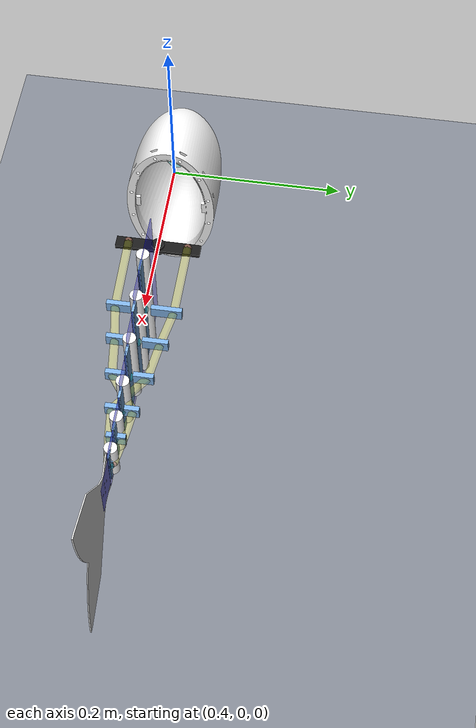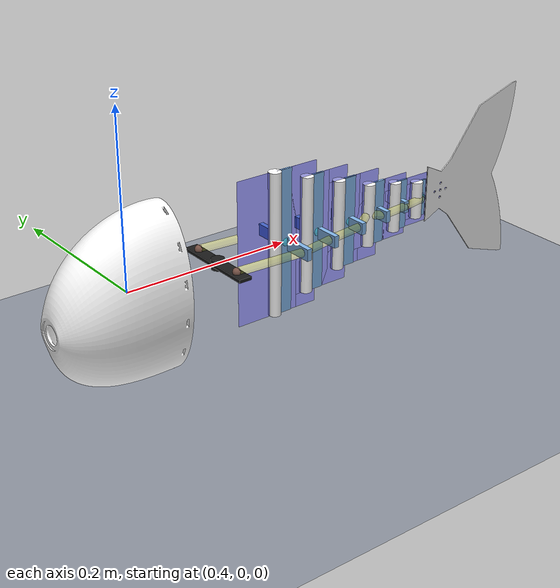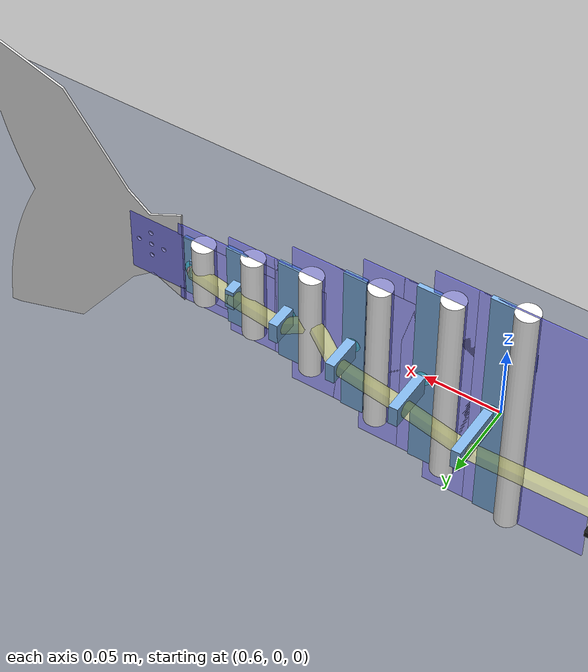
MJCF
<!--Creates a tendon fish based on Mike Yan Michelis' design. Adds a contact set between the head and the sliding block-->
<!-- Measures the force of the fish (from the thrust of its tail) via the FishTest.py script and the force sensor on the block-->
<!-- adds a realistic mass value to the bodies-->
<!--adds realistic proportions and ratios amongst the tail length, tail joints, motor to head and motor to tail-->
<!--same as TendonFishFullSize.xml, except it doesn't have any unnecessary stl files or force sensor, should just measure forward movement-->
<mujoco model="tendonFish">
    <option gravity="0 0 0" density="1000" viscosity="0.0013" integrator="implicitfast" timestep="0.001" iterations="100" solver="Newton" tolerance="1e-15" ls_tolerance="1e-9" noslip_tolerance="1e-9" o_solimp="0 0.01 0.01 0.1 2">
        <flag contact="enable"/>
    </option>

    <visual>
        <global offheight="2160" offwidth="3840"/>
        <rgba haze=".3 .3 .3 1"/>
    </visual>

    <!--add a mesh that pivots like the actual fishtank setup-->
    <!--imports meshes-->
    <asset>
        <texture type="skybox" builtin="gradient" rgb1="0.6 0.6 0.6" rgb2="0 0 0" width="512" height="512"/>
        <texture name="texplane" type="2d" builtin="checker" rgb1=".15 .2 .35" rgb2=".2 .3 .45" width="512" height="512" mark="cross" markrgb=".8 .8 .8"/>
        <material name="matplane" reflectance="0.3" texture="texplane" texrepeat="10 10" texuniform="true"/>
        <mesh name="tailMesh" file="C:\Users\15405\OneDrive\Desktop\Career\ETHZ\ETHZ Work\mujoco-3.3.2-windows-x86_64\model\mesh\tailV2.STL" scale="0.0015 0.0015 0.0015" />
        <mesh name="headMesh" file="C:\Users\15405\OneDrive\Desktop\Career\ETHZ\ETHZ Work\mujoco-3.3.2-windows-x86_64\model\mesh\headExternal.STL" scale="0.0015 0.0015 0.0015" />
        <mesh name="Tank" file="C:\Users\15405\OneDrive\Desktop\Career\ETHZ\ETHZ Work\mujoco-3.3.2-windows-x86_64\model\mesh\glassTank.STL" scale="0.0015 0.0015 0.0025" />
        <mesh name="loadCell" file="C:\Users\15405\OneDrive\Desktop\Career\ETHZ\ETHZ Work\mujoco-3.3.2-windows-x86_64\model\mesh\loadCell.STL" scale="0.015 0.025 0.025" />
        <mesh name="4040" file="C:\Users\15405\OneDrive\Desktop\Career\ETHZ\ETHZ Work\mujoco-3.3.2-windows-x86_64\model\mesh\4040_L1.STL" scale="0.0025 0.0025 0.0025" />
        <mesh name="tubeConnector" file="C:\Users\15405\OneDrive\Desktop\Career\ETHZ\ETHZ Work\mujoco-3.3.2-windows-x86_64\model\mesh\tubeConnector.STL" scale="0.0015 0.0025 0.0025" />
        <mesh name="4040_smaller" file="C:\Users\15405\OneDrive\Desktop\Career\ETHZ\ETHZ Work\mujoco-3.3.2-windows-x86_64\model\mesh\4040_L1.STL" scale="0.0025 0.0025 0.0015" />

        <material name="acrylic" rgba="0.576470588235 0.694117647059 0.8 0.2"/>
        <material name="alu" reflectance="0.9" specular="0.9" shininess="0.9" rgba=".7 .7 .7 1"/>
        <material name="marker" rgba="0.0196078431373 0.960784313725 0.96862745098 .3"/>
        <!--density of PLA taken to be 1430, not referenced as a body but all density=1430 references are taken to be PLA-->
    </asset>

    <!--High damping and stifness values on tendon make it semi-rigid which is what is intended in the real-fish test-->
    <default>
        <joint type="hinge" pos="0 0 0" axis="0 0 1" range="-80 80" stiffness="0.65" damping="0.0"/>
        <geom fluidcoef="0.1 0.1 0.1 2.0 1.0" condim="1"/>
        <tendon width="0.005" rgba="0.941176470588 0.96862745098 0.0196078431373 .2" stiffness="60" damping="1"/>
    </default>

    <worldbody>
        <camera name="fixed" pos="0.4 -1.2 1.2" xyaxes="1 0 0 0 1 1"/>
        <camera name="fixedTop" pos="-0.85 0 1.5" xyaxes="0 -1 0 1 0 0.75"/>
        <camera name="fixedDiag" pos="1.2 -1.3 1.3" xyaxes="0.8 0.6 0 -0.4 0.5 0.75"/>
        <camera pos="0.625 -0.842 0.620" xyaxes="0.758 0.653 -0.000 -0.468 0.544 0.697"/>

        <geom name="floor" pos="0 0 -0.2" size="0 0 1" type="plane" material="matplane"/>
        <geom name="ceiling" pos="0 0 0.2" size="0 0 1" zaxis="0 0 -1" type="plane" rgba=".7 .1 .1 0"/>
        <light directional="true" diffuse=".8 .8 .8" specular=".2 .2 .2" pos="0 0 5" dir="0 0 -1"/>

        <!-- adds a slider range to keep the fish always propogating forward from its original com like in the simulation -->
        <!-- add a slider that keeps the head moving forward-->
        <body pos=".35 0 0">
            <joint name="headX" pos="0.02432519 0 0.00306519" type="slide" axis="1 0 0" stiffness="0" damping="0" range="-0.025669489880513867 0.003387345022720789"/>
            <site name="COM" pos="0.02432519 0 0.00306519" size="0.015" material="marker"/>

            <!-- realistic mass should be about .1 kg, had been .25 -->
            <geom name="head_mesh" type="mesh" mesh="headMesh" pos=".1 0.065 .1"  material="acrylic" mass=".1" quat="0 0 .7071 -.7071" fluidshape="ellipsoid"  contype="1" conaffinity="1" rgba="1 1 1 1" />

            <body pos="0.1635 0 0" name="motor" >
                <joint name="motor_rotate" type="hinge" axis="0 0 1" pos="0 0 0" limited="false" stiffness="0" damping="0"/>
                <geom name="motorSlider" type="cylinder" pos="0 0 0" size="0.0075 0.006" rgba=".1 .1 .1 1" density="1250" fluidshape="ellipsoid"/>
                <geom name="motorRods" type="box" pos="0 0 0" size="0.0075 0.05 0.001975" rgba=".1 .1 .1 1" density="1250" fluidshape="ellipsoid" contype="0" conaffinity="0"/>
                <site name="bodyLeft" pos="0 -0.035 0.00345" size="0.005" rgba=".9 .6 .5 .5"/>
                <site name="bodyRight" pos="0 0.035 0.00345" size="0.005" rgba=".9 .6 .5 .5"/>
            </body>

            <!--center frame realistic mass should be around .2 kg , divided by 5 joints should be .04 kg per joint, however, we are using PLA density-->
            <!--had been .290000-->
            <!--to get correct sizing distance, this first position is moved from .29 to .24 then all are moved backwards .1-->
            <!--changed color scheme to be more tolerant to color-blind people with blue-yellow white scheme-->
            <body pos="0.24 0 0">
                <geom name="joint0" type="cylinder" pos="0 0 0" size="0.0075 0.08625" rgba="1 1 1 1" mass="0" contype="0" conaffinity="0"/>
                <joint name="joint0"/>
                <geom name="joint0-tail0" type="box" pos="0.0035 0 0" size="0.0535 0.0005 0.08625" rgba="0 0 1 .4" mass="0.001" fluidshape="ellipsoid" contype="0" conaffinity="0"/>
                <geom name="tail0" type="box" pos="0.014499999999999999 0 0" size="0.0075 0.0015 0.08625" rgba=".5 .7 .9 1" density="1250" fluidshape="ellipsoid" contype="0" conaffinity="0"/>
                <site name="marker4" pos="0.014499999999999999 0 0" size="0.005" material="marker"/>

                <!--sizes of the tail_left and right aren't changed, positions further will be moved negatively .005-->
                <geom name="tail0left" type="box" pos="0.014 -0.02575 0" size="0.003 0.018 0.007" rgba=".5 .7 .9 1" density="1250" fluidshape="ellipsoid" contype="0" conaffinity="0"/>
                <geom name="tail0right" type="box" pos="0.014 0.02575 0" size="0.003 0.018 0.007" rgba=".5 .7 .9 1" density="1250" fluidshape="ellipsoid" contype="0" conaffinity="0"/>
                <site name="tail0left" pos="0.014 -0.034 0" size="0.004" rgba=".9 .6 .5 .5"/>
                <site name="tail0right" pos="0.014 0.034 0" size="0.004" rgba=".9 .6 .5 .5"/>

                <geom name="tail0-joint1" type="box" pos="0.02575 0 0" size="0.00375 0.0005 0.08625" rgba="0 0 1 .4" mass="0.04" fluidshape="ellipsoid" contype="0" conaffinity="0"/>

                <body pos="0.0445 0 0">
                    <geom name="joint1" type="cylinder" pos="0 0 0" size="0.0075 0.0703125" rgba="1 1 1 1" mass="0" contype="0" conaffinity="0"/>
                    <joint name="joint1"/>
                    <geom name="joint1-tail1" type="box" pos="0.00375 0 0" size="0.05375 0.0005 0.0703125" rgba="0 0 1 .4" mass="0.001" fluidshape="ellipsoid" contype="0" conaffinity="0"/>
                    <geom name="tail1" type="box" pos="0.015 0 0" size="0.0075 0.0015 0.0703125" rgba=".5 .7 .9 1" density="1430" fluidshape="ellipsoid" contype="0" conaffinity="0"/>
                    <site name="marker5" pos="0.015 0 0" size="0.005" material="marker"/>

                    <geom name="tail1left" type="box" pos="0.0145 -0.02075 0" size="0.003 0.0148 0.007" rgba=".5 .7 .9 1" density="1430" fluidshape="ellipsoid" contype="0" conaffinity="0"/>
                    <geom name="tail1right" type="box" pos="0.0145 0.02075 0" size="0.003 0.0148 0.007" rgba=".5 .7 .9 1" density="1430" fluidshape="ellipsoid" contype="0" conaffinity="0"/>
                    <site name="tail1left" pos="0.0145 -0.026 0" size="0.004" rgba=".9 .6 .5 .5"/>
                    <site name="tail1right" pos="0.0145 0.026 0" size="0.004" rgba=".9 .6 .5 .5"/>

                    <geom name="tail1-joint2" type="box" pos="0.02675 0 0" size="0.00425 0.0005 0.0703125" rgba="0 0 1 .4" mass="0.001" fluidshape="ellipsoid" contype="0" conaffinity="0"/>

                    <body pos="0.046 0 0">
                        <geom name="joint2" type="cylinder" pos="0 0 0" size="0.0075 0.054375" rgba="1 1 1 1" mass="0" contype="0" conaffinity="0"/>
                        <joint name="joint2"/>
                        <geom name="joint2-tail2" type="box" pos="0.00425 0 0" size="0.05425 0.0005 0.054375" rgba="0 0 1 .4" mass="0.001" fluidshape="ellipsoid" contype="0" conaffinity="0"/>
                        <geom name="tail2" type="box" pos="0.016 0 0" size="0.0075 0.0015 0.054375" rgba=".5 .7 .9 1" density="1430" fluidshape="ellipsoid" contype="0" conaffinity="0"/>
                        <site name="marker6" pos="0.016 0 0" size="0.005" material="marker"/>

                        <geom name="tail2left" type="box" pos="0.0155 -0.01575 0" size="0.003 0.0116 0.007" rgba=".5 .7 .9 1" density="1430" fluidshape="ellipsoid" contype="0" conaffinity="0"/>
                        <geom name="tail2right" type="box" pos="0.0155 0.01575 0" size="0.003 0.0116 0.007" rgba=".5 .7 .9 1" density="1430" fluidshape="ellipsoid" contype="0" conaffinity="0"/>
                        <site name="tail2left" pos="0.0155 -0.020 0" size="0.004" rgba=".9 .6 .5 .5"/>
                        <site name="tail2right" pos="0.0155 0.020 0" size="0.004" rgba=".9 .6 .5 .5"/>

                        <geom name="tail2-joint3" type="box" pos="0.027 0 0" size="0.0035 0.0005 0.054375" rgba="0 0 1 .4" mass="0.001" fluidshape="ellipsoid" contype="0" conaffinity="0"/>

                        <body pos="0.0455 0 0">
                            <geom name="joint3" type="cylinder" pos="0 0 0" size="0.0075 0.0384375" rgba="1 1 1 1" mass="0" contype="0" conaffinity="0"/>
                            <joint name="joint3"/>
                            <geom name="joint3-tail3" type="box" pos="0.0035 0 0" size="0.0535 0.0005 0.0384375" rgba="0 0 1 .4" mass="0.001" fluidshape="ellipsoid" contype="0" conaffinity="0"/>
                            <geom name="tail3" type="box" pos="0.014499999999999999 0 0" size="0.0075 0.0015 0.0384375" rgba=".5 .7 .9 1" density="1430" fluidshape="ellipsoid" contype="0" conaffinity="0"/>
                            <site name="marker7" pos="0.014499999999999999 0 0" size="0.005" material="marker"/>

                            <geom name="tail3left" type="box" pos="0.014 -0.01075 0" size="0.003 0.0084 0.007" rgba=".5 .7 .9 1" density="1430" fluidshape="ellipsoid" contype="0" conaffinity="0"/>
                            <geom name="tail3right" type="box" pos="0.014 0.01075 0" size="0.003 0.0084 0.007" rgba=".5 .7 .9 1" density="1430" fluidshape="ellipsoid" contype="0" conaffinity="0"/>
                            <site name="tail3left" pos="0.014 -0.012 0" size="0.004" rgba=".9 .6 .5 .5"/>
                            <site name="tail3right" pos="0.014 0.012 0" size="0.004" rgba=".9 .6 .5 .5"/>

                            <geom name="tail3-joint4" type="box" pos="0.0235 0 0" size="0.0015 0.0005 0.0384375" rgba="0 0 1 .4" mass="0.001" fluidshape="ellipsoid" contype="0" conaffinity="0"/>

                            <body pos="0.039999999999999998 0 0">
                                <geom name="joint4" type="cylinder" pos="0 0 0" size="0.0075 0.03046875" rgba="1 1 1 1" mass="0" contype="0" conaffinity="0"/>
                                <joint name="joint4"/>
                                <geom name="joint4-tail4" type="box" pos="0.0015 0 0" size="0.0515 0.0005 0.03046875" rgba="0 0 1 .4" mass="0.001" fluidshape="ellipsoid" contype="0" conaffinity="0"/>
                                <geom name="tail4" type="box" pos="0.010499999999999999 0 0" size="0.0075 0.0015 0.03046875" rgba=".5 .7 .9 1" density="1430" fluidshape="ellipsoid" contype="0" conaffinity="0"/>
                                <site name="marker8" pos="0.010499999999999999 0 0" size="0.005" material="marker"/>

                                <geom name="tail4left" type="box" pos="0.01 -0.00575 0" size="0.003 0.0052 0.007" rgba=".5 .7 .9 1" density="1430" fluidshape="ellipsoid" contype="0" conaffinity="0"/>
                                <geom name="tail4right" type="box" pos="0.01 0.00575 0" size="0.003 0.0052 0.007" rgba=".5 .7 .9 1" density="1430" fluidshape="ellipsoid" contype="0" conaffinity="0"/>
                                <site name="tail4left" pos="0.01 -0.008 0" size="0.004" rgba=".9 .6 .5 .5"/>
                                <site name="tail4right" pos="0.01 0.008 0" size="0.004" rgba=".9 .6 .5 .5"/>

                                <body pos="0.035 0 0">
                                    <geom name="joint5" type="cylinder" pos="0 0 0" size="0.0075 0.0225" rgba="1 1 1 1" mass="0" contype="0" conaffinity="0"/>
                                    <joint name="joint5"/>
                                    <geom name="joint5-tail5" type="box" pos="0.0015 0 0" size="0.0515 0.0005 0.0225" rgba="0 0 1 .4" mass="0.001" fluidshape="ellipsoid" contype="0" conaffinity="0"/>
                                    <geom name="tail5" type="box" pos="0.008 0 0" size="0.0055 0.0012 0.0225" rgba=".5 .7 .9 1" density="1430" fluidshape="ellipsoid" contype="0" conaffinity="0"/>
                                    <site name="marker9" pos="0.008 0 0" size="0.005" material="marker"/>

                                    <geom name="tail5left" type="box" pos="0.006 -0.00075 0" size="0.003 0.002 0.007" rgba=".5 .7 .9 1" density="1430" fluidshape="ellipsoid" contype="0" conaffinity="0"/>
                                    <geom name="tail5right" type="box" pos="0.006 0.00075 0" size="0.003 0.002 0.007" rgba=".5 .7 .9 1" density="1430" fluidshape="ellipsoid" contype="0" conaffinity="0"/>
                                    <site name="tail5left" pos="0.006 -0.003 0" size="0.004" rgba=".9 .6 .5 .5"/>
                                    <site name="tail5right" pos="0.006 0.003 0" size="0.004" rgba=".9 .6 .5 .5"/>

                                <!-- Tail Fin, realistic mass should be about .05 kg, was .15 kg -->
                                <geom name="finTail" type="mesh"  mesh="tailMesh" pos="-.190 0 -.110" size="0.005 0.005 0.025" quat="0.7071 0.7071 0 0" rgba=".9 .9 .9 1" mass="0.05" fluidshape="ellipsoid" contype="0" conaffinity="0"/>
                                <site name="marker10" pos="0.025 .0085 -0.5" size="0.005" material="marker"/>

                                </body>
                            </body>
                        </body>
                    </body>
                </body>
            </body>
        </body>

    </worldbody>

    <!--tail organization-->
    <tendon>
        <spatial name="tendonLeft">
            <site site="bodyLeft"/>
            <site site="tail0left"/>
            <site site="tail1left"/>
            <site site="tail2left"/>
            <site site="tail3right"/>
            <site site="tail4right"/>
            <site site="tail5right"/>
        </spatial>
        <spatial name="tendonRight" >
            <site site="bodyRight"/>
            <site site="tail0right"/>
            <site site="tail1right"/>
            <site site="tail2right"/>
            <site site="tail3left"/>
            <site site="tail4left"/>
            <site site="tail5left"/>
        </spatial>
    </tendon>

    <!--creates actuator to control motor and to couple the forceamplifier. Measures the force with a sensor-->
    <actuator>
        <velocity name="motor" joint="motor_rotate" kv="100" ctrllimited="true" ctrlrange="-20 20" forcerange="-5 5"/>
    </actuator>

</mujoco>
